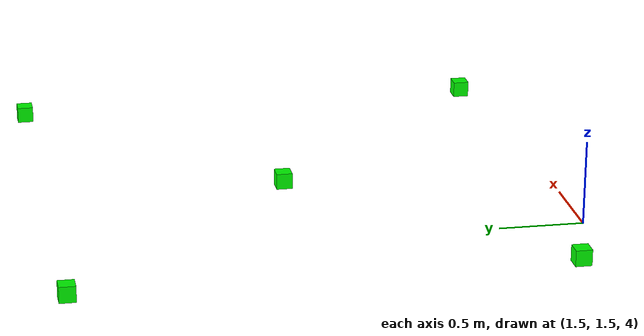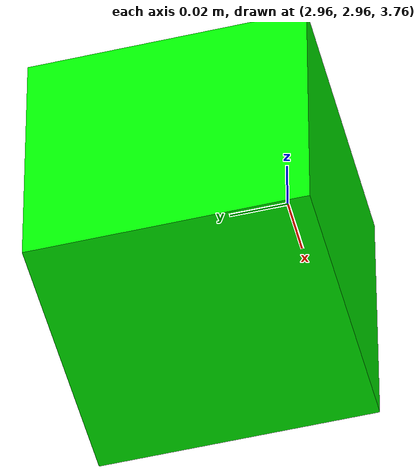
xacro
<?xml version="1.0"?>
<robot xmlns:xacro="http://www.ros.org/wiki/xacro" name="cameras">

  <xacro:property name="map_frame" value="map"/>

  <xacro:property name="PI" value="3.1415926535897931"/>
  <xacro:property name="PI_2" value="${PI / 2}"/>

  <link name="${map_frame}"/>

  <xacro:include filename="$(find models)/urdf/jai-sp-5000m.xacro"/>
  <xacro:cam name="cam1_2" parent="${map_frame}" xyz="1.5 4.5 3.8" rpy="0 ${PI_2} ${PI}"/>

  <xacro:include filename="$(find models)/urdf/jai-sp-5000m.xacro"/>
  <xacro:cam name="cam2_2" parent="${map_frame}" xyz="1.5 1.5 3.8" rpy="0 ${PI_2} ${PI}"/>

  <xacro:include filename="$(find models)/urdf/jai-sp-5000m.xacro"/>
  <xacro:cam name="cam3_2" parent="${map_frame}" xyz="4.5 1.5 3.8" rpy="0 ${PI_2} ${PI}"/>

  <xacro:include filename="$(find models)/urdf/jai-sp-5000m.xacro"/>
  <xacro:cam name="cam4_2" parent="${map_frame}" xyz="4.5 4.5 3.8" rpy="0 ${PI_2} ${PI_2}"/>

  <xacro:include filename="$(find models)/urdf/jai-sp-5000c.xacro"/>
  <xacro:cam name="cam5_2" parent="${map_frame}" xyz="3.0 3.0 3.8" rpy="0 ${PI_2} ${PI}"/>

  <gazebo>
    <static>true</static>
    <self_collide>0</self_collide>
    <kinematic>0</kinematic>
    <gravity>0</gravity>
  </gazebo>

</robot>

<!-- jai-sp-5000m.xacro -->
<robot xmlns:xacro="http://www.ros.org/wiki/xacro">

  <!-- Camera -->
  <xacro:macro name="cam" params="name parent xyz rpy">

    <joint name="${parent}_${name}_joint" type="fixed">
      <axis xyz="0 0 1"/>
      <origin xyz="${xyz}" rpy="${rpy}"/>
      <parent link="${parent}"/>
      <child link="${name}"/>
    </joint>

    <link name="${name}">
      <inertial>
        <mass value="1e-5"/>
        <origin xyz="0 0 0" rpy="0 0 0"/>
        <inertia ixx="0" ixy="0" ixz="0" iyy="0" iyz="0" izz="0"/>
      </inertial>
      <visual name='visual'>
        <origin xyz="0 0 0" rpy="0 0 0"/>
        <geometry>
          <box size="0.1 0.1 0.1"/>
        </geometry>
        <material name="Green">
          <color rgba="0 1.0 0 1.0"/>
        </material>
      </visual>
      <collision>
        <origin xyz="0 0 0" rpy="0 0 0"/>
        <geometry>
          <box size="0.1 0.1 0.1"/>
        </geometry>
      </collision>
    </link>

    <gazebo reference="${name}">
      <static>true</static>
      <sensor type="camera" name="${name}">
        <always_on>0</always_on>
        <update_rate>10</update_rate>
        <visualize>1</visualize>
        <camera name="${name}">
          <horizontal_fov>1.349481884</horizontal_fov>
          <image>
            <width>2560</width>
            <height>2048</height>
            <format>L8</format>
          </image>
          <clip>
            <near>0.1</near>
            <far>6000</far>
          </clip>
        </camera>
        <plugin name="camera_controller" filename="libgazebo_ros_camera.so">
          <robotNamespace>${name}</robotNamespace>
          <alwaysOn>0</alwaysOn>
          <updateRate>0.0</updateRate>
          <imageTopicName>image_raw</imageTopicName>
          <cameraInfoTopicName>camera_info</cameraInfoTopicName>
          <frameName>base_link</frameName>
        </plugin>
      </sensor>
    </gazebo>

  </xacro:macro>
</robot>

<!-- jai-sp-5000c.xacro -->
<robot xmlns:xacro="http://www.ros.org/wiki/xacro">

  <!-- Camera -->
  <xacro:macro name="cam" params="name parent xyz rpy">

    <joint name="${parent}_${name}_joint" type="fixed">
      <axis xyz="0 0 1"/>
      <origin xyz="${xyz}" rpy="${rpy}"/>
      <parent link="${parent}"/>
      <child link="${name}"/>
    </joint>

    <link name="${name}">
      <inertial>
        <mass value="1e-5"/>
        <origin xyz="0 0 0" rpy="0 0 0"/>
        <inertia ixx="0" ixy="0" ixz="0" iyy="0" iyz="0" izz="0"/>
      </inertial>
      <visual name='visual'>
        <origin xyz="0 0 0" rpy="0 0 0"/>
        <geometry>
          <box size="0.1 0.1 0.1"/>
        </geometry>
        <material name="Green">
          <color rgba="0 1.0 0 1.0"/>
        </material>
      </visual>
      <collision>
        <origin xyz="0 0 0" rpy="0 0 0"/>
        <geometry>
          <box size="0.1 0.1 0.1"/>
        </geometry>
      </collision>
    </link>

    <gazebo reference="${name}">
      <static>true</static>
      <sensor type="camera" name="${name}">
        <always_on>0</always_on>
        <update_rate>10</update_rate>
        <visualize>1</visualize>
        <camera name="${name}">
          <horizontal_fov>1.635290092</horizontal_fov>
          <image>
            <width>2560</width>
            <height>2048</height>
            <format>R8G8B8</format>
          </image>
          <clip>
            <near>0.1</near>
            <far>6000</far>
          </clip>
        </camera>
        <plugin name="camera_controller" filename="libgazebo_ros_camera.so">
          <robotNamespace>${name}</robotNamespace>
          <alwaysOn>0</alwaysOn>
          <updateRate>0.0</updateRate>
          <imageTopicName>image_raw</imageTopicName>
          <cameraInfoTopicName>camera_info</cameraInfoTopicName>
          <frameName>base_link</frameName>
        </plugin>
      </sensor>
    </gazebo>

  </xacro:macro>
</robot>
